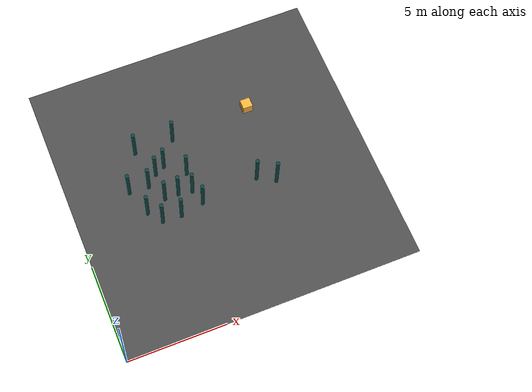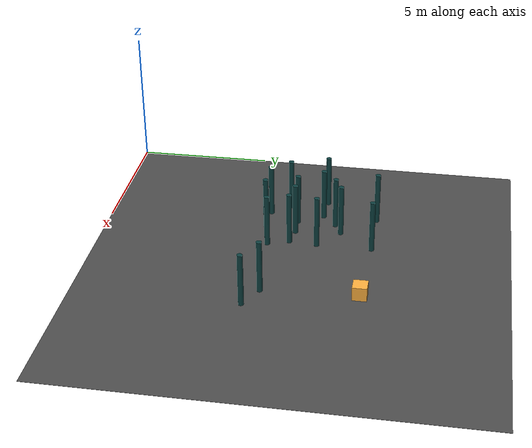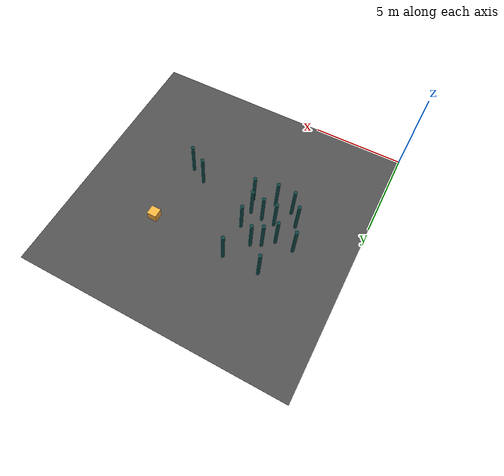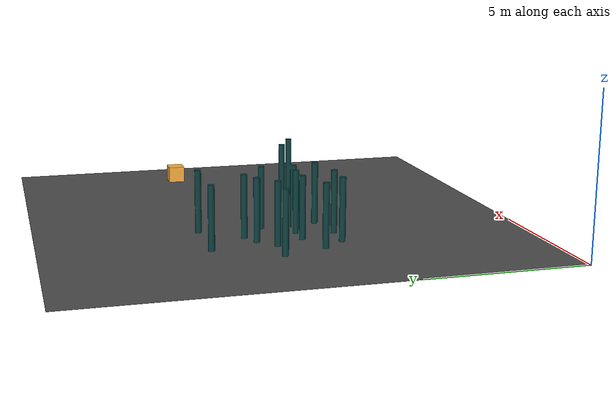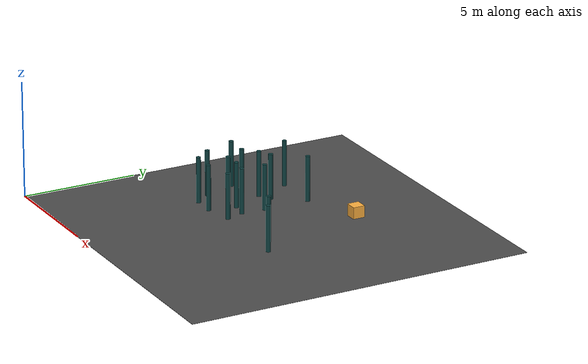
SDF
<sdf version="1.6">
 <world name="default">
  <model name="env_plane">
   <link name="link">
    <inertial>
     <mass>1</mass>
     <inertia><ixx>1</ixx><ixy>0</ixy><ixz>0</ixz><iyy>1</iyy><iyz>0</iyz><izz>1</izz></inertia>
    </inertial>
    <visual name="visual">
     <cast_shadows>0</cast_shadows>
     <geometry><box><size>15 15 0.01</size></box></geometry>
     <material>
      <script>
       <uri>model://asphalt_plane/materials/scripts</uri>
       <uri>model://asphalt_plane/materials/textures</uri>
       <name>vrc/asphalt</name>
      </script>
      <shader type="pixel"><normal_map>__default__</normal_map></shader>
      <diffuse>0.7 0.7 0.7 1</diffuse>
      <ambient>0.5 0.5 0.5 1</ambient>
      <specular>0.5 0.5 0.5 1</specular>
      <emissive>0.7 0.7 0.7 1</emissive>
     </material>
    </visual>
    <collision name="collision">
     <geometry><box><size>20 20 0.1</size></box></geometry>
     <surface>
      <friction>
       <ode><mu>1</mu><mu2>1</mu2><fdir1>0 0 0</fdir1><slip1>0</slip1><slip2>0</slip2></ode>
       <torsional>
        <coefficient>1</coefficient>
        <patch_radius>0</patch_radius>
        <surface_radius>0</surface_radius>
        <use_patch_radius>1</use_patch_radius>
        <ode><slip>0</slip></ode>
       </torsional>
      </friction>
      <bounce><restitution_coefficient>0</restitution_coefficient><threshold>1e+06</threshold></bounce>
      <contact>
       <collide_without_contact>0</collide_without_contact>
       <collide_without_contact_bitmask>1</collide_without_contact_bitmask>
       <collide_bitmask>1</collide_bitmask>
       <ode>
        <soft_cfm>0</soft_cfm>
        <soft_erp>0.2</soft_erp>
        <kp>1e+13</kp>
        <kd>1</kd>
        <max_vel>0.01</max_vel>
        <min_depth>0</min_depth>
       </ode>
       <bullet>
        <split_impulse>1</split_impulse>
        <split_impulse_penetration_threshold>-0.01</split_impulse_penetration_threshold>
        <soft_cfm>0</soft_cfm>
        <soft_erp>0.2</soft_erp>
        <kp>1e+13</kp>
        <kd>1</kd>
       </bullet>
      </contact>
     </surface>
    </collision>
   </link>
   <static>1</static>
   <pose>7.5 7.5 0 0 -0 0</pose>
  </model>
  <model name="obstacle_clone_0">
   <link name="link">
    <inertial>
     <mass>112.569</mass>
     <inertia><ixx>33.2512</ixx><ixy>0</ixy><ixz>0</ixz><iyy>33.2512</iyy><iyz>0</iyz><izz>0.537779</izz></inertia>
    </inertial>
    <visual name="visual">
     <geometry><cylinder><radius>0.1</radius><length>2</length></cylinder></geometry>
     <material>
      <script><name>Gazebo/Grey</name><uri>file://media/materials/scripts/gazebo.material</uri></script>
      <shader type="pixel"><normal_map>__default__</normal_map></shader>
      <ambient>0.05 0.25 0.25 1</ambient>
      <diffuse>0.3 0.3 0.3 1</diffuse>
      <specular>0.01 0.01 0.01 1</specular>
      <emissive>0.1 0.1 0.1 1</emissive>
      <lighting>1</lighting>
     </material>
    </visual>
    <collision name="collision">
     <geometry><cylinder><radius>0.097748</radius><length>1.87509</length></cylinder></geometry>
     <surface>
      <friction>
       <ode><mu>1</mu><mu2>1</mu2><fdir1>0 0 0</fdir1><slip1>0</slip1><slip2>0</slip2></ode>
       <torsional>
        <coefficient>1</coefficient>
        <patch_radius>0</patch_radius>
        <surface_radius>0</surface_radius>
        <use_patch_radius>1</use_patch_radius>
        <ode><slip>0</slip></ode>
       </torsional>
      </friction>
      <bounce><restitution_coefficient>0</restitution_coefficient><threshold>1e+06</threshold></bounce>
      <contact>
       <collide_without_contact>0</collide_without_contact>
       <collide_without_contact_bitmask>1</collide_without_contact_bitmask>
       <collide_bitmask>1</collide_bitmask>
       <ode>
        <soft_cfm>0</soft_cfm>
        <soft_erp>0.2</soft_erp>
        <kp>1e+13</kp>
        <kd>1</kd>
        <max_vel>0.01</max_vel>
        <min_depth>0</min_depth>
       </ode>
       <bullet>
        <split_impulse>1</split_impulse>
        <split_impulse_penetration_threshold>-0.01</split_impulse_penetration_threshold>
        <soft_cfm>0</soft_cfm>
        <soft_erp>0.2</soft_erp>
        <kp>1e+13</kp>
        <kd>1</kd>
       </bullet>
      </contact>
     </surface>
    </collision>
   </link>
   <static>0</static>
   <pose>3.46578 6.68275 0.987551 -5.8e-05 2.5e-05 0.013494</pose>
  </model>
  <model name="obstacle_clone_3">
   <link name="link">
    <inertial>
     <mass>112.569</mass>
     <inertia><ixx>33.2512</ixx><ixy>0</ixy><ixz>0</ixz><iyy>33.2512</iyy><iyz>0</iyz><izz>0.537779</izz></inertia>
    </inertial>
    <visual name="visual">
     <geometry><cylinder><radius>0.1</radius><length>2</length></cylinder></geometry>
     <material>
      <script><name>Gazebo/Grey</name><uri>file://media/materials/scripts/gazebo.material</uri></script>
      <shader type="pixel"><normal_map>__default__</normal_map></shader>
      <ambient>0.05 0.25 0.25 1</ambient>
      <diffuse>0.3 0.3 0.3 1</diffuse>
      <specular>0.01 0.01 0.01 1</specular>
      <emissive>0.1 0.1 0.1 1</emissive>
      <lighting>1</lighting>
     </material>
    </visual>
    <collision name="collision">
     <geometry><cylinder><radius>0.097748</radius><length>1.87509</length></cylinder></geometry>
     <surface>
      <friction>
       <ode><mu>1</mu><mu2>1</mu2><fdir1>0 0 0</fdir1><slip1>0</slip1><slip2>0</slip2></ode>
       <torsional>
        <coefficient>1</coefficient>
        <patch_radius>0</patch_radius>
        <surface_radius>0</surface_radius>
        <use_patch_radius>1</use_patch_radius>
        <ode><slip>0</slip></ode>
       </torsional>
      </friction>
      <bounce><restitution_coefficient>0</restitution_coefficient><threshold>1e+06</threshold></bounce>
      <contact>
       <collide_without_contact>0</collide_without_contact>
       <collide_without_contact_bitmask>1</collide_without_contact_bitmask>
       <collide_bitmask>1</collide_bitmask>
       <ode>
        <soft_cfm>0</soft_cfm>
        <soft_erp>0.2</soft_erp>
        <kp>1e+13</kp>
        <kd>1</kd>
        <max_vel>0.01</max_vel>
        <min_depth>0</min_depth>
       </ode>
       <bullet>
        <split_impulse>1</split_impulse>
        <split_impulse_penetration_threshold>-0.01</split_impulse_penetration_threshold>
        <soft_cfm>0</soft_cfm>
        <soft_erp>0.2</soft_erp>
        <kp>1e+13</kp>
        <kd>1</kd>
       </bullet>
      </contact>
     </surface>
    </collision>
   </link>
   <static>0</static>
   <pose>4.51879 7.09695 0.987543 -2.9e-05 1.3e-05 0.004365</pose>
  </model>
  <model name="obstacle_clone_5">
   <link name="link">
    <inertial>
     <mass>112.569</mass>
     <inertia><ixx>33.2512</ixx><ixy>0</ixy><ixz>0</ixz><iyy>33.2512</iyy><iyz>0</iyz><izz>0.537779</izz></inertia>
    </inertial>
    <visual name="visual">
     <geometry><cylinder><radius>0.1</radius><length>2</length></cylinder></geometry>
     <material>
      <script><name>Gazebo/Grey</name><uri>file://media/materials/scripts/gazebo.material</uri></script>
      <shader type="pixel"><normal_map>__default__</normal_map></shader>
      <ambient>0.05 0.25 0.25 1</ambient>
      <diffuse>0.3 0.3 0.3 1</diffuse>
      <specular>0.01 0.01 0.01 1</specular>
      <emissive>0.1 0.1 0.1 1</emissive>
      <lighting>1</lighting>
     </material>
    </visual>
    <collision name="collision">
     <geometry><cylinder><radius>0.097748</radius><length>1.87509</length></cylinder></geometry>
     <surface>
      <friction>
       <ode><mu>1</mu><mu2>1</mu2><fdir1>0 0 0</fdir1><slip1>0</slip1><slip2>0</slip2></ode>
       <torsional>
        <coefficient>1</coefficient>
        <patch_radius>0</patch_radius>
        <surface_radius>0</surface_radius>
        <use_patch_radius>1</use_patch_radius>
        <ode><slip>0</slip></ode>
       </torsional>
      </friction>
      <bounce><restitution_coefficient>0</restitution_coefficient><threshold>1e+06</threshold></bounce>
      <contact>
       <collide_without_contact>0</collide_without_contact>
       <collide_without_contact_bitmask>1</collide_without_contact_bitmask>
       <collide_bitmask>1</collide_bitmask>
       <ode>
        <soft_cfm>0</soft_cfm>
        <soft_erp>0.2</soft_erp>
        <kp>1e+13</kp>
        <kd>1</kd>
        <max_vel>0.01</max_vel>
        <min_depth>0</min_depth>
       </ode>
       <bullet>
        <split_impulse>1</split_impulse>
        <split_impulse_penetration_threshold>-0.01</split_impulse_penetration_threshold>
        <soft_cfm>0</soft_cfm>
        <soft_erp>0.2</soft_erp>
        <kp>1e+13</kp>
        <kd>1</kd>
       </bullet>
      </contact>
     </surface>
    </collision>
   </link>
   <static>0</static>
   <pose>4.00006 5.99998 0.987543 -3e-05 1.3e-05 0.011993</pose>
  </model>
  <model name="obstacle_clone_8">
   <link name="link">
    <inertial>
     <mass>112.569</mass>
     <inertia><ixx>33.2512</ixx><ixy>0</ixy><ixz>0</ixz><iyy>33.2512</iyy><iyz>0</iyz><izz>0.537779</izz></inertia>
    </inertial>
    <visual name="visual">
     <geometry><cylinder><radius>0.1</radius><length>2</length></cylinder></geometry>
     <material>
      <script><name>Gazebo/Grey</name><uri>file://media/materials/scripts/gazebo.material</uri></script>
      <shader type="pixel"><normal_map>__default__</normal_map></shader>
      <ambient>0.05 0.25 0.25 1</ambient>
      <diffuse>0.3 0.3 0.3 1</diffuse>
      <specular>0.01 0.01 0.01 1</specular>
      <emissive>0.1 0.1 0.1 1</emissive>
      <lighting>1</lighting>
     </material>
    </visual>
    <collision name="collision">
     <geometry><cylinder><radius>0.097748</radius><length>1.87509</length></cylinder></geometry>
     <surface>
      <friction>
       <ode><mu>1</mu><mu2>1</mu2><fdir1>0 0 0</fdir1><slip1>0</slip1><slip2>0</slip2></ode>
       <torsional>
        <coefficient>1</coefficient>
        <patch_radius>0</patch_radius>
        <surface_radius>0</surface_radius>
        <use_patch_radius>1</use_patch_radius>
        <ode><slip>0</slip></ode>
       </torsional>
      </friction>
      <bounce><restitution_coefficient>0</restitution_coefficient><threshold>1e+06</threshold></bounce>
      <contact>
       <collide_without_contact>0</collide_without_contact>
       <collide_without_contact_bitmask>1</collide_without_contact_bitmask>
       <collide_bitmask>1</collide_bitmask>
       <ode>
        <soft_cfm>0</soft_cfm>
        <soft_erp>0.2</soft_erp>
        <kp>1e+13</kp>
        <kd>1</kd>
        <max_vel>0.01</max_vel>
        <min_depth>0</min_depth>
       </ode>
       <bullet>
        <split_impulse>1</split_impulse>
        <split_impulse_penetration_threshold>-0.01</split_impulse_penetration_threshold>
        <soft_cfm>0</soft_cfm>
        <soft_erp>0.2</soft_erp>
        <kp>1e+13</kp>
        <kd>1</kd>
       </bullet>
      </contact>
     </surface>
    </collision>
   </link>
   <static>0</static>
   <pose>4.95988 5.9557 0.987551 -5.6e-05 2.5e-05 0.013582</pose>
  </model>
  <model name="obstacle_clone_13">
   <link name="link">
    <inertial>
     <mass>112.569</mass>
     <inertia><ixx>33.2512</ixx><ixy>0</ixy><ixz>0</ixz><iyy>33.2512</iyy><iyz>0</iyz><izz>0.537779</izz></inertia>
    </inertial>
    <visual name="visual">
     <geometry><cylinder><radius>0.1</radius><length>2</length></cylinder></geometry>
     <material>
      <script><name>Gazebo/Grey</name><uri>file://media/materials/scripts/gazebo.material</uri></script>
      <shader type="pixel"><normal_map>__default__</normal_map></shader>
      <ambient>0.05 0.25 0.25 1</ambient>
      <diffuse>0.3 0.3 0.3 1</diffuse>
      <specular>0.01 0.01 0.01 1</specular>
      <emissive>0.1 0.1 0.1 1</emissive>
      <lighting>1</lighting>
     </material>
    </visual>
    <collision name="collision">
     <geometry><cylinder><radius>0.097748</radius><length>1.87509</length></cylinder></geometry>
     <surface>
      <friction>
       <ode><mu>1</mu><mu2>1</mu2><fdir1>0 0 0</fdir1><slip1>0</slip1><slip2>0</slip2></ode>
       <torsional>
        <coefficient>1</coefficient>
        <patch_radius>0</patch_radius>
        <surface_radius>0</surface_radius>
        <use_patch_radius>1</use_patch_radius>
        <ode><slip>0</slip></ode>
       </torsional>
      </friction>
      <bounce><restitution_coefficient>0</restitution_coefficient><threshold>1e+06</threshold></bounce>
      <contact>
       <collide_without_contact>0</collide_without_contact>
       <collide_without_contact_bitmask>1</collide_without_contact_bitmask>
       <collide_bitmask>1</collide_bitmask>
       <ode>
        <soft_cfm>0</soft_cfm>
        <soft_erp>0.2</soft_erp>
        <kp>1e+13</kp>
        <kd>1</kd>
        <max_vel>0.01</max_vel>
        <min_depth>0</min_depth>
       </ode>
       <bullet>
        <split_impulse>1</split_impulse>
        <split_impulse_penetration_threshold>-0.01</split_impulse_penetration_threshold>
        <soft_cfm>0</soft_cfm>
        <soft_erp>0.2</soft_erp>
        <kp>1e+13</kp>
        <kd>1</kd>
       </bullet>
      </contact>
     </surface>
    </collision>
   </link>
   <static>0</static>
   <pose>10.0001 6.00004 0.987542 -6e-05 3e-05 0.005681</pose>
  </model>
  <model name="obstacle_clone_16">
   <link name="link">
    <inertial>
     <mass>112.569</mass>
     <inertia><ixx>33.2512</ixx><ixy>0</ixy><ixz>0</ixz><iyy>33.2512</iyy><iyz>0</iyz><izz>0.537779</izz></inertia>
    </inertial>
    <visual name="visual">
     <geometry><cylinder><radius>0.1</radius><length>2</length></cylinder></geometry>
     <material>
      <script><name>Gazebo/Grey</name><uri>file://media/materials/scripts/gazebo.material</uri></script>
      <shader type="pixel"><normal_map>__default__</normal_map></shader>
      <ambient>0.05 0.25 0.25 1</ambient>
      <diffuse>0.3 0.3 0.3 1</diffuse>
      <specular>0.01 0.01 0.01 1</specular>
      <emissive>0.1 0.1 0.1 1</emissive>
      <lighting>1</lighting>
     </material>
    </visual>
    <collision name="collision">
     <geometry><cylinder><radius>0.097748</radius><length>1.87509</length></cylinder></geometry>
     <surface>
      <friction>
       <ode><mu>1</mu><mu2>1</mu2><fdir1>0 0 0</fdir1><slip1>0</slip1><slip2>0</slip2></ode>
       <torsional>
        <coefficient>1</coefficient>
        <patch_radius>0</patch_radius>
        <surface_radius>0</surface_radius>
        <use_patch_radius>1</use_patch_radius>
        <ode><slip>0</slip></ode>
       </torsional>
      </friction>
      <bounce><restitution_coefficient>0</restitution_coefficient><threshold>1e+06</threshold></bounce>
      <contact>
       <collide_without_contact>0</collide_without_contact>
       <collide_without_contact_bitmask>1</collide_without_contact_bitmask>
       <collide_bitmask>1</collide_bitmask>
       <ode>
        <soft_cfm>0</soft_cfm>
        <soft_erp>0.2</soft_erp>
        <kp>1e+13</kp>
        <kd>1</kd>
        <max_vel>0.01</max_vel>
        <min_depth>0</min_depth>
       </ode>
       <bullet>
        <split_impulse>1</split_impulse>
        <split_impulse_penetration_threshold>-0.01</split_impulse_penetration_threshold>
        <soft_cfm>0</soft_cfm>
        <soft_erp>0.2</soft_erp>
        <kp>1e+13</kp>
        <kd>1</kd>
       </bullet>
      </contact>
     </surface>
    </collision>
   </link>
   <static>0</static>
   <pose>5.22672 7.10255 0.987541 -5.6e-05 2.4e-05 0.011738</pose>
  </model>
  <model name="obstacle_clone_17">
   <link name="link">
    <inertial>
     <mass>112.569</mass>
     <inertia><ixx>33.2512</ixx><ixy>0</ixy><ixz>0</ixz><iyy>33.2512</iyy><iyz>0</iyz><izz>0.537779</izz></inertia>
    </inertial>
    <visual name="visual">
     <geometry><cylinder><radius>0.1</radius><length>2</length></cylinder></geometry>
     <material>
      <script><name>Gazebo/Grey</name><uri>file://media/materials/scripts/gazebo.material</uri></script>
      <shader type="pixel"><normal_map>__default__</normal_map></shader>
      <ambient>0.05 0.25 0.25 1</ambient>
      <diffuse>0.3 0.3 0.3 1</diffuse>
      <specular>0.01 0.01 0.01 1</specular>
      <emissive>0.1 0.1 0.1 1</emissive>
      <lighting>1</lighting>
     </material>
    </visual>
    <collision name="collision">
     <geometry><cylinder><radius>0.097748</radius><length>1.87509</length></cylinder></geometry>
     <surface>
      <friction>
       <ode><mu>1</mu><mu2>1</mu2><fdir1>0 0 0</fdir1><slip1>0</slip1><slip2>0</slip2></ode>
       <torsional>
        <coefficient>1</coefficient>
        <patch_radius>0</patch_radius>
        <surface_radius>0</surface_radius>
        <use_patch_radius>1</use_patch_radius>
        <ode><slip>0</slip></ode>
       </torsional>
      </friction>
      <bounce><restitution_coefficient>0</restitution_coefficient><threshold>1e+06</threshold></bounce>
      <contact>
       <collide_without_contact>0</collide_without_contact>
       <collide_without_contact_bitmask>1</collide_without_contact_bitmask>
       <collide_bitmask>1</collide_bitmask>
       <ode>
        <soft_cfm>0</soft_cfm>
        <soft_erp>0.2</soft_erp>
        <kp>1e+13</kp>
        <kd>1</kd>
        <max_vel>0.01</max_vel>
        <min_depth>0</min_depth>
       </ode>
       <bullet>
        <split_impulse>1</split_impulse>
        <split_impulse_penetration_threshold>-0.01</split_impulse_penetration_threshold>
        <soft_cfm>0</soft_cfm>
        <soft_erp>0.2</soft_erp>
        <kp>1e+13</kp>
        <kd>1</kd>
       </bullet>
      </contact>
     </surface>
    </collision>
   </link>
   <static>0</static>
   <pose>4.00102 8.00006 0.987542 -6e-05 2.6e-05 0.010424</pose>
  </model>
  <model name="obstacle_clone_18">
   <link name="link">
    <inertial>
     <mass>112.569</mass>
     <inertia><ixx>33.2512</ixx><ixy>0</ixy><ixz>0</ixz><iyy>33.2512</iyy><iyz>0</iyz><izz>0.537779</izz></inertia>
    </inertial>
    <visual name="visual">
     <geometry><cylinder><radius>0.1</radius><length>2</length></cylinder></geometry>
     <material>
      <script><name>Gazebo/Grey</name><uri>file://media/materials/scripts/gazebo.material</uri></script>
      <shader type="pixel"><normal_map>__default__</normal_map></shader>
      <ambient>0.05 0.25 0.25 1</ambient>
      <diffuse>0.3 0.3 0.3 1</diffuse>
      <specular>0.01 0.01 0.01 1</specular>
      <emissive>0.1 0.1 0.1 1</emissive>
      <lighting>1</lighting>
     </material>
    </visual>
    <collision name="collision">
     <geometry><cylinder><radius>0.097748</radius><length>1.87509</length></cylinder></geometry>
     <surface>
      <friction>
       <ode><mu>1</mu><mu2>1</mu2><fdir1>0 0 0</fdir1><slip1>0</slip1><slip2>0</slip2></ode>
       <torsional>
        <coefficient>1</coefficient>
        <patch_radius>0</patch_radius>
        <surface_radius>0</surface_radius>
        <use_patch_radius>1</use_patch_radius>
        <ode><slip>0</slip></ode>
       </torsional>
      </friction>
      <bounce><restitution_coefficient>0</restitution_coefficient><threshold>1e+06</threshold></bounce>
      <contact>
       <collide_without_contact>0</collide_without_contact>
       <collide_without_contact_bitmask>1</collide_without_contact_bitmask>
       <collide_bitmask>1</collide_bitmask>
       <ode>
        <soft_cfm>0</soft_cfm>
        <soft_erp>0.2</soft_erp>
        <kp>1e+13</kp>
        <kd>1</kd>
        <max_vel>0.01</max_vel>
        <min_depth>0</min_depth>
       </ode>
       <bullet>
        <split_impulse>1</split_impulse>
        <split_impulse_penetration_threshold>-0.01</split_impulse_penetration_threshold>
        <soft_cfm>0</soft_cfm>
        <soft_erp>0.2</soft_erp>
        <kp>1e+13</kp>
        <kd>1</kd>
       </bullet>
      </contact>
     </surface>
    </collision>
   </link>
   <static>0</static>
   <pose>4.00045 10 0.987541 -5.3e-05 2.4e-05 0.013616</pose>
  </model>
  <model name="obstacle_clone_19">
   <link name="link">
    <inertial>
     <mass>112.569</mass>
     <inertia><ixx>33.2512</ixx><ixy>0</ixy><ixz>0</ixz><iyy>33.2512</iyy><iyz>0</iyz><izz>0.537779</izz></inertia>
    </inertial>
    <visual name="visual">
     <geometry><cylinder><radius>0.1</radius><length>2</length></cylinder></geometry>
     <material>
      <script><name>Gazebo/Grey</name><uri>file://media/materials/scripts/gazebo.material</uri></script>
      <shader type="pixel"><normal_map>__default__</normal_map></shader>
      <ambient>0.05 0.25 0.25 1</ambient>
      <diffuse>0.3 0.3 0.3 1</diffuse>
      <specular>0.01 0.01 0.01 1</specular>
      <emissive>0.1 0.1 0.1 1</emissive>
      <lighting>1</lighting>
     </material>
    </visual>
    <collision name="collision">
     <geometry><cylinder><radius>0.097748</radius><length>1.87509</length></cylinder></geometry>
     <surface>
      <friction>
       <ode><mu>1</mu><mu2>1</mu2><fdir1>0 0 0</fdir1><slip1>0</slip1><slip2>0</slip2></ode>
       <torsional>
        <coefficient>1</coefficient>
        <patch_radius>0</patch_radius>
        <surface_radius>0</surface_radius>
        <use_patch_radius>1</use_patch_radius>
        <ode><slip>0</slip></ode>
       </torsional>
      </friction>
      <bounce><restitution_coefficient>0</restitution_coefficient><threshold>1e+06</threshold></bounce>
      <contact>
       <collide_without_contact>0</collide_without_contact>
       <collide_without_contact_bitmask>1</collide_without_contact_bitmask>
       <collide_bitmask>1</collide_bitmask>
       <ode>
        <soft_cfm>0</soft_cfm>
        <soft_erp>0.2</soft_erp>
        <kp>1e+13</kp>
        <kd>1</kd>
        <max_vel>0.01</max_vel>
        <min_depth>0</min_depth>
       </ode>
       <bullet>
        <split_impulse>1</split_impulse>
        <split_impulse_penetration_threshold>-0.01</split_impulse_penetration_threshold>
        <soft_cfm>0</soft_cfm>
        <soft_erp>0.2</soft_erp>
        <kp>1e+13</kp>
        <kd>1</kd>
       </bullet>
      </contact>
     </surface>
    </collision>
   </link>
   <static>0</static>
   <pose>5.91869 6.98161 0.987541 -5.7e-05 2.3e-05 0.005416</pose>
  </model>
  <model name="obstacle_clone_20">
   <link name="link">
    <inertial>
     <mass>112.569</mass>
     <inertia><ixx>33.2512</ixx><ixy>0</ixy><ixz>0</ixz><iyy>33.2512</iyy><iyz>0</iyz><izz>0.537779</izz></inertia>
    </inertial>
    <visual name="visual">
     <geometry><cylinder><radius>0.1</radius><length>2</length></cylinder></geometry>
     <material>
      <script><name>Gazebo/Grey</name><uri>file://media/materials/scripts/gazebo.material</uri></script>
      <shader type="pixel"><normal_map>__default__</normal_map></shader>
      <ambient>0.05 0.25 0.25 1</ambient>
      <diffuse>0.3 0.3 0.3 1</diffuse>
      <specular>0.01 0.01 0.01 1</specular>
      <emissive>0.1 0.1 0.1 1</emissive>
      <lighting>1</lighting>
     </material>
    </visual>
    <collision name="collision">
     <geometry><cylinder><radius>0.097748</radius><length>1.87509</length></cylinder></geometry>
     <surface>
      <friction>
       <ode><mu>1</mu><mu2>1</mu2><fdir1>0 0 0</fdir1><slip1>0</slip1><slip2>0</slip2></ode>
       <torsional>
        <coefficient>1</coefficient>
        <patch_radius>0</patch_radius>
        <surface_radius>0</surface_radius>
        <use_patch_radius>1</use_patch_radius>
        <ode><slip>0</slip></ode>
       </torsional>
      </friction>
      <bounce><restitution_coefficient>0</restitution_coefficient><threshold>1e+06</threshold></bounce>
      <contact>
       <collide_without_contact>0</collide_without_contact>
       <collide_without_contact_bitmask>1</collide_without_contact_bitmask>
       <collide_bitmask>1</collide_bitmask>
       <ode>
        <soft_cfm>0</soft_cfm>
        <soft_erp>0.2</soft_erp>
        <kp>1e+13</kp>
        <kd>1</kd>
        <max_vel>0.01</max_vel>
        <min_depth>0</min_depth>
       </ode>
       <bullet>
        <split_impulse>1</split_impulse>
        <split_impulse_penetration_threshold>-0.01</split_impulse_penetration_threshold>
        <soft_cfm>0</soft_cfm>
        <soft_erp>0.2</soft_erp>
        <kp>1e+13</kp>
        <kd>1</kd>
       </bullet>
      </contact>
     </surface>
    </collision>
   </link>
   <static>0</static>
   <pose>6.00018 10 0.987541 -5.7e-05 2.7e-05 0.005512</pose>
  </model>
  <model name="obstacle_clone_21">
   <link name="link">
    <inertial>
     <mass>112.569</mass>
     <inertia><ixx>33.2512</ixx><ixy>0</ixy><ixz>0</ixz><iyy>33.2512</iyy><iyz>0</iyz><izz>0.537779</izz></inertia>
    </inertial>
    <visual name="visual">
     <geometry><cylinder><radius>0.1</radius><length>2</length></cylinder></geometry>
     <material>
      <script><name>Gazebo/Grey</name><uri>file://media/materials/scripts/gazebo.material</uri></script>
      <shader type="pixel"><normal_map>__default__</normal_map></shader>
      <ambient>0.05 0.25 0.25 1</ambient>
      <diffuse>0.3 0.3 0.3 1</diffuse>
      <specular>0.01 0.01 0.01 1</specular>
      <emissive>0.1 0.1 0.1 1</emissive>
      <lighting>1</lighting>
     </material>
    </visual>
    <collision name="collision">
     <geometry><cylinder><radius>0.097748</radius><length>1.87509</length></cylinder></geometry>
     <surface>
      <friction>
       <ode><mu>1</mu><mu2>1</mu2><fdir1>0 0 0</fdir1><slip1>0</slip1><slip2>0</slip2></ode>
       <torsional>
        <coefficient>1</coefficient>
        <patch_radius>0</patch_radius>
        <surface_radius>0</surface_radius>
        <use_patch_radius>1</use_patch_radius>
        <ode><slip>0</slip></ode>
       </torsional>
      </friction>
      <bounce><restitution_coefficient>0</restitution_coefficient><threshold>1e+06</threshold></bounce>
      <contact>
       <collide_without_contact>0</collide_without_contact>
       <collide_without_contact_bitmask>1</collide_without_contact_bitmask>
       <collide_bitmask>1</collide_bitmask>
       <ode>
        <soft_cfm>0</soft_cfm>
        <soft_erp>0.2</soft_erp>
        <kp>1e+13</kp>
        <kd>1</kd>
        <max_vel>0.01</max_vel>
        <min_depth>0</min_depth>
       </ode>
       <bullet>
        <split_impulse>1</split_impulse>
        <split_impulse_penetration_threshold>-0.01</split_impulse_penetration_threshold>
        <soft_cfm>0</soft_cfm>
        <soft_erp>0.2</soft_erp>
        <kp>1e+13</kp>
        <kd>1</kd>
       </bullet>
      </contact>
     </surface>
    </collision>
   </link>
   <static>0</static>
   <pose>6.00043 8.00007 0.987542 -6.1e-05 2.5e-05 0.013585</pose>
  </model>
  <model name="obstacle_clone_22">
   <link name="link">
    <inertial>
     <mass>112.569</mass>
     <inertia><ixx>33.2512</ixx><ixy>0</ixy><ixz>0</ixz><iyy>33.2512</iyy><iyz>0</iyz><izz>0.537779</izz></inertia>
    </inertial>
    <visual name="visual">
     <geometry><cylinder><radius>0.1</radius><length>2</length></cylinder></geometry>
     <material>
      <script><name>Gazebo/Grey</name><uri>file://media/materials/scripts/gazebo.material</uri></script>
      <shader type="pixel"><normal_map>__default__</normal_map></shader>
      <ambient>0.05 0.25 0.25 1</ambient>
      <diffuse>0.3 0.3 0.3 1</diffuse>
      <specular>0.01 0.01 0.01 1</specular>
      <emissive>0.1 0.1 0.1 1</emissive>
      <lighting>1</lighting>
     </material>
    </visual>
    <collision name="collision">
     <geometry><cylinder><radius>0.097748</radius><length>1.87509</length></cylinder></geometry>
     <surface>
      <friction>
       <ode><mu>1</mu><mu2>1</mu2><fdir1>0 0 0</fdir1><slip1>0</slip1><slip2>0</slip2></ode>
       <torsional>
        <coefficient>1</coefficient>
        <patch_radius>0</patch_radius>
        <surface_radius>0</surface_radius>
        <use_patch_radius>1</use_patch_radius>
        <ode><slip>0</slip></ode>
       </torsional>
      </friction>
      <bounce><restitution_coefficient>0</restitution_coefficient><threshold>1e+06</threshold></bounce>
      <contact>
       <collide_without_contact>0</collide_without_contact>
       <collide_without_contact_bitmask>1</collide_without_contact_bitmask>
       <collide_bitmask>1</collide_bitmask>
       <ode>
        <soft_cfm>0</soft_cfm>
        <soft_erp>0.2</soft_erp>
        <kp>1e+13</kp>
        <kd>1</kd>
        <max_vel>0.01</max_vel>
        <min_depth>0</min_depth>
       </ode>
       <bullet>
        <split_impulse>1</split_impulse>
        <split_impulse_penetration_threshold>-0.01</split_impulse_penetration_threshold>
        <soft_cfm>0</soft_cfm>
        <soft_erp>0.2</soft_erp>
        <kp>1e+13</kp>
        <kd>1</kd>
       </bullet>
      </contact>
     </surface>
    </collision>
   </link>
   <static>0</static>
   <pose>3.00226 8.04308 0.98755 -5.3e-05 2.3e-05 -0.091181</pose>
  </model>
  <model name="obstacle_clone_25">
   <link name="link">
    <inertial>
     <mass>112.569</mass>
     <inertia><ixx>33.2512</ixx><ixy>0</ixy><ixz>0</ixz><iyy>33.2512</iyy><iyz>0</iyz><izz>0.537779</izz></inertia>
    </inertial>
    <visual name="visual">
     <geometry><cylinder><radius>0.1</radius><length>2</length></cylinder></geometry>
     <material>
      <script><name>Gazebo/Grey</name><uri>file://media/materials/scripts/gazebo.material</uri></script>
      <shader type="pixel"><normal_map>__default__</normal_map></shader>
      <ambient>0.05 0.25 0.25 1</ambient>
      <diffuse>0.3 0.3 0.3 1</diffuse>
      <specular>0.01 0.01 0.01 1</specular>
      <emissive>0.1 0.1 0.1 1</emissive>
      <lighting>1</lighting>
     </material>
    </visual>
    <collision name="collision">
     <geometry><cylinder><radius>0.097748</radius><length>1.87509</length></cylinder></geometry>
     <surface>
      <friction>
       <ode><mu>1</mu><mu2>1</mu2><fdir1>0 0 0</fdir1><slip1>0</slip1><slip2>0</slip2></ode>
       <torsional>
        <coefficient>1</coefficient>
        <patch_radius>0</patch_radius>
        <surface_radius>0</surface_radius>
        <use_patch_radius>1</use_patch_radius>
        <ode><slip>0</slip></ode>
       </torsional>
      </friction>
      <bounce><restitution_coefficient>0</restitution_coefficient><threshold>1e+06</threshold></bounce>
      <contact>
       <collide_without_contact>0</collide_without_contact>
       <collide_without_contact_bitmask>1</collide_without_contact_bitmask>
       <collide_bitmask>1</collide_bitmask>
       <ode>
        <soft_cfm>0</soft_cfm>
        <soft_erp>0.2</soft_erp>
        <kp>1e+13</kp>
        <kd>1</kd>
        <max_vel>0.01</max_vel>
        <min_depth>0</min_depth>
       </ode>
       <bullet>
        <split_impulse>1</split_impulse>
        <split_impulse_penetration_threshold>-0.01</split_impulse_penetration_threshold>
        <soft_cfm>0</soft_cfm>
        <soft_erp>0.2</soft_erp>
        <kp>1e+13</kp>
        <kd>1</kd>
       </bullet>
      </contact>
     </surface>
    </collision>
   </link>
   <static>0</static>
   <pose>5.07301 8.76833 0.987543 -3.1e-05 1.4e-05 0.009104</pose>
  </model>
  <model name="obstacle_clone_28">
   <link name="link">
    <inertial>
     <mass>112.569</mass>
     <inertia><ixx>33.2512</ixx><ixy>0</ixy><ixz>0</ixz><iyy>33.2512</iyy><iyz>0</iyz><izz>0.537779</izz></inertia>
    </inertial>
    <visual name="visual">
     <geometry><cylinder><radius>0.1</radius><length>2</length></cylinder></geometry>
     <material>
      <script><name>Gazebo/Grey</name><uri>file://media/materials/scripts/gazebo.material</uri></script>
      <shader type="pixel"><normal_map>__default__</normal_map></shader>
      <ambient>0.05 0.25 0.25 1</ambient>
      <diffuse>0.3 0.3 0.3 1</diffuse>
      <specular>0.01 0.01 0.01 1</specular>
      <emissive>0.1 0.1 0.1 1</emissive>
      <lighting>1</lighting>
     </material>
    </visual>
    <collision name="collision">
     <geometry><cylinder><radius>0.097748</radius><length>1.87509</length></cylinder></geometry>
     <surface>
      <friction>
       <ode><mu>1</mu><mu2>1</mu2><fdir1>0 0 0</fdir1><slip1>0</slip1><slip2>0</slip2></ode>
       <torsional>
        <coefficient>1</coefficient>
        <patch_radius>0</patch_radius>
        <surface_radius>0</surface_radius>
        <use_patch_radius>1</use_patch_radius>
        <ode><slip>0</slip></ode>
       </torsional>
      </friction>
      <bounce><restitution_coefficient>0</restitution_coefficient><threshold>1e+06</threshold></bounce>
      <contact>
       <collide_without_contact>0</collide_without_contact>
       <collide_without_contact_bitmask>1</collide_without_contact_bitmask>
       <collide_bitmask>1</collide_bitmask>
       <ode>
        <soft_cfm>0</soft_cfm>
        <soft_erp>0.2</soft_erp>
        <kp>1e+13</kp>
        <kd>1</kd>
        <max_vel>0.01</max_vel>
        <min_depth>0</min_depth>
       </ode>
       <bullet>
        <split_impulse>1</split_impulse>
        <split_impulse_penetration_threshold>-0.01</split_impulse_penetration_threshold>
        <soft_cfm>0</soft_cfm>
        <soft_erp>0.2</soft_erp>
        <kp>1e+13</kp>
        <kd>1</kd>
       </bullet>
      </contact>
     </surface>
    </collision>
   </link>
   <static>0</static>
   <pose>6.16832 6.21036 0.987542 -5.8e-05 2.9e-05 0.005069</pose>
  </model>
  <model name="obstacle_clone_29">
   <link name="link">
    <inertial>
     <mass>112.569</mass>
     <inertia><ixx>33.2512</ixx><ixy>0</ixy><ixz>0</ixz><iyy>33.2512</iyy><iyz>0</iyz><izz>0.537779</izz></inertia>
    </inertial>
    <visual name="visual">
     <geometry><cylinder><radius>0.1</radius><length>2</length></cylinder></geometry>
     <material>
      <script><name>Gazebo/Grey</name><uri>file://media/materials/scripts/gazebo.material</uri></script>
      <shader type="pixel"><normal_map>__default__</normal_map></shader>
      <ambient>0.05 0.25 0.25 1</ambient>
      <diffuse>0.3 0.3 0.3 1</diffuse>
      <specular>0.01 0.01 0.01 1</specular>
      <emissive>0.1 0.1 0.1 1</emissive>
      <lighting>1</lighting>
     </material>
    </visual>
    <collision name="collision">
     <geometry><cylinder><radius>0.097748</radius><length>1.87509</length></cylinder></geometry>
     <surface>
      <friction>
       <ode><mu>1</mu><mu2>1</mu2><fdir1>0 0 0</fdir1><slip1>0</slip1><slip2>0</slip2></ode>
       <torsional>
        <coefficient>1</coefficient>
        <patch_radius>0</patch_radius>
        <surface_radius>0</surface_radius>
        <use_patch_radius>1</use_patch_radius>
        <ode><slip>0</slip></ode>
       </torsional>
      </friction>
      <bounce><restitution_coefficient>0</restitution_coefficient><threshold>1e+06</threshold></bounce>
      <contact>
       <collide_without_contact>0</collide_without_contact>
       <collide_without_contact_bitmask>1</collide_without_contact_bitmask>
       <collide_bitmask>1</collide_bitmask>
       <ode>
        <soft_cfm>0</soft_cfm>
        <soft_erp>0.2</soft_erp>
        <kp>1e+13</kp>
        <kd>1</kd>
        <max_vel>0.01</max_vel>
        <min_depth>0</min_depth>
       </ode>
       <bullet>
        <split_impulse>1</split_impulse>
        <split_impulse_penetration_threshold>-0.01</split_impulse_penetration_threshold>
        <soft_cfm>0</soft_cfm>
        <soft_erp>0.2</soft_erp>
        <kp>1e+13</kp>
        <kd>1</kd>
       </bullet>
      </contact>
     </surface>
    </collision>
   </link>
   <static>0</static>
   <pose>9.13265 6.48126 0.987541 -5.1e-05 2.1e-05 0.013273</pose>
  </model>
  <model name="obstacle_clone_31">
   <link name="link">
    <inertial>
     <mass>112.569</mass>
     <inertia><ixx>33.2512</ixx><ixy>0</ixy><ixz>0</ixz><iyy>33.2512</iyy><iyz>0</iyz><izz>0.537779</izz></inertia>
    </inertial>
    <visual name="visual">
     <geometry><cylinder><radius>0.1</radius><length>2</length></cylinder></geometry>
     <material>
      <script><name>Gazebo/Grey</name><uri>file://media/materials/scripts/gazebo.material</uri></script>
      <shader type="pixel"><normal_map>__default__</normal_map></shader>
      <ambient>0.05 0.25 0.25 1</ambient>
      <diffuse>0.3 0.3 0.3 1</diffuse>
      <specular>0.01 0.01 0.01 1</specular>
      <emissive>0.1 0.1 0.1 1</emissive>
      <lighting>1</lighting>
     </material>
    </visual>
    <collision name="collision">
     <geometry><cylinder><radius>0.097748</radius><length>1.87509</length></cylinder></geometry>
     <surface>
      <friction>
       <ode><mu>1</mu><mu2>1</mu2><fdir1>0 0 0</fdir1><slip1>0</slip1><slip2>0</slip2></ode>
       <torsional>
        <coefficient>1</coefficient>
        <patch_radius>0</patch_radius>
        <surface_radius>0</surface_radius>
        <use_patch_radius>1</use_patch_radius>
        <ode><slip>0</slip></ode>
       </torsional>
      </friction>
      <bounce><restitution_coefficient>0</restitution_coefficient><threshold>1e+06</threshold></bounce>
      <contact>
       <collide_without_contact>0</collide_without_contact>
       <collide_without_contact_bitmask>1</collide_without_contact_bitmask>
       <collide_bitmask>1</collide_bitmask>
       <ode>
        <soft_cfm>0</soft_cfm>
        <soft_erp>0.2</soft_erp>
        <kp>1e+13</kp>
        <kd>1</kd>
        <max_vel>0.01</max_vel>
        <min_depth>0</min_depth>
       </ode>
       <bullet>
        <split_impulse>1</split_impulse>
        <split_impulse_penetration_threshold>-0.01</split_impulse_penetration_threshold>
        <soft_cfm>0</soft_cfm>
        <soft_erp>0.2</soft_erp>
        <kp>1e+13</kp>
        <kd>1</kd>
       </bullet>
      </contact>
     </surface>
    </collision>
   </link>
   <static>0</static>
   <pose>4.55132 8.50576 0.987551 -5.7e-05 2.5e-05 0.0124</pose>
  </model>
  <model name="destination">
   <link name="link">
    <inertial>
     <mass>0.0182097</mass>
     <inertia>
      <ixx>2.41e-05</ixx>
      <ixy>0</ixy>
      <ixz>0</ixz>
      <iyy>1.97e-05</iyy>
      <iyz>0</iyz>
      <izz>2.207e-05</izz>
     </inertia>
    </inertial>
    <gravity>0</gravity>
    <visual name="visual">
     <geometry><box><size>0.5 0.5 0.5</size></box></geometry>
     <material>
      <script><name>Gazebo/Grey</name><uri>file://media/materials/scripts/gazebo.material</uri></script>
      <shader type="pixel"><normal_map>__default__</normal_map></shader>
      <ambient>0.988 0.686 0.243 1</ambient>
      <diffuse>0.988 0.686 0.243 1</diffuse>
      <specular>0.988 0.686 0.243 1</specular>
      <emissive>0.988 0.686 0.243 1</emissive>
     </material>
    </visual>
    <collision name="collision">
     <geometry><box><size>0.5 0.5 0.5</size></box></geometry>
     <surface>
      <friction>
       <ode><mu>1</mu><mu2>1</mu2><fdir1>0 0 0</fdir1><slip1>0</slip1><slip2>0</slip2></ode>
       <torsional>
        <coefficient>1</coefficient>
        <patch_radius>0</patch_radius>
        <surface_radius>0</surface_radius>
        <use_patch_radius>1</use_patch_radius>
        <ode><slip>0</slip></ode>
       </torsional>
      </friction>
      <bounce><restitution_coefficient>0</restitution_coefficient><threshold>1e+06</threshold></bounce>
      <contact>
       <collide_without_contact>1</collide_without_contact>
       <collide_without_contact_bitmask>1</collide_without_contact_bitmask>
       <collide_bitmask>1</collide_bitmask>
       <ode>
        <soft_cfm>0</soft_cfm>
        <soft_erp>0.2</soft_erp>
        <kp>1e+13</kp>
        <kd>1</kd>
        <max_vel>0.01</max_vel>
        <min_depth>0</min_depth>
       </ode>
       <bullet>
        <split_impulse>1</split_impulse>
        <split_impulse_penetration_threshold>-0.01</split_impulse_penetration_threshold>
        <soft_cfm>0</soft_cfm>
        <soft_erp>0.2</soft_erp>
        <kp>1e+13</kp>
        <kd>1</kd>
       </bullet>
      </contact>
     </surface>
    </collision>
   </link>
   <static>0</static>
   <pose>10 10 1 0 -0 0</pose>
  </model>
 </world>
</sdf>
